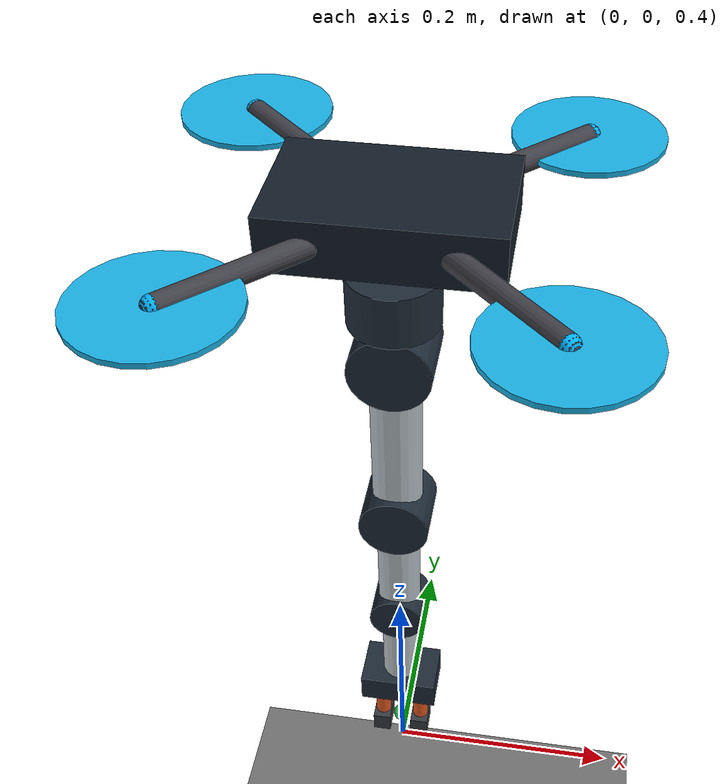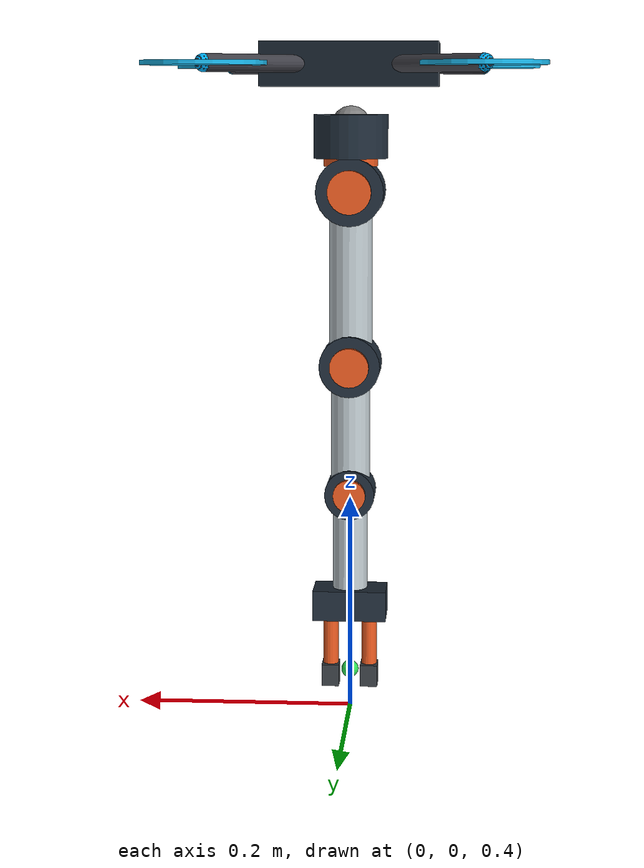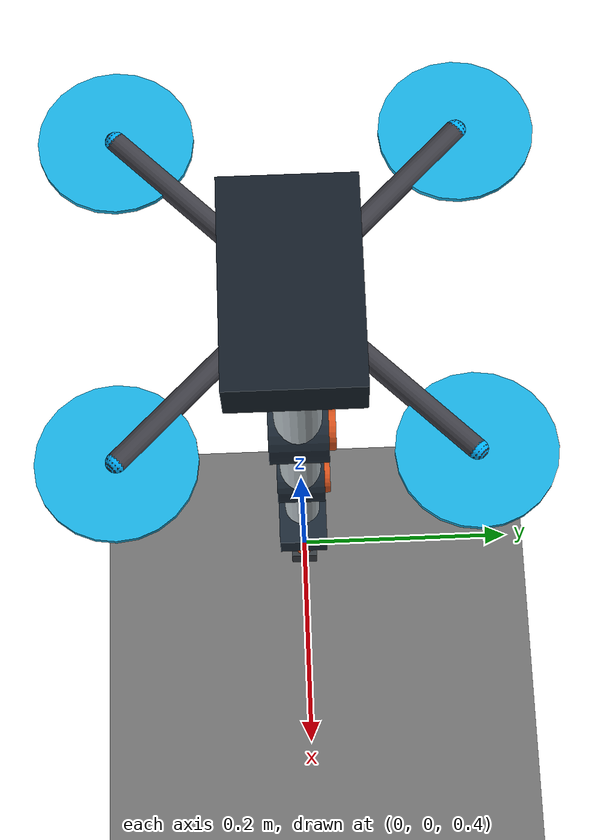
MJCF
<mujoco model="aerial_manipulator_hover">
  <compiler angle="radian" autolimits="true"/>
  <!-- Keep the robot's contacts enabled in this manipulation scene. -->
  <default>
    <default class="quadrotor_parts">
      <geom contype="1" conaffinity="1"/>
    </default>
  </default>

  <option timestep="0.001" gravity="0 0 -9.81" integrator="Euler"/>
  <size nuser_site="1"/>
  <!-- A compact statistic extent gives the free viewer a useful initial zoom. -->
  <statistic center="0 0 1" extent="3"/>

  <custom>
    <!-- NED planning bounds around the short hover workspace. -->
    <numeric name="planning_bounds" data="-5 -5 -2 5 5 0"/>
    <numeric name="flight_limits" data="3 2 8 12 0.7"/>
  </custom>

  <visual>
    <global azimuth="135" elevation="-25"/>
    <map znear="0.01" zfar="30"/>
  </visual>

  <asset>
    <texture name="ground_grid" type="2d" builtin="checker" width="512" height="512"
             rgb1="0.55 0.55 0.55" rgb2="0.35 0.35 0.35"/>
    <material name="ground" texture="ground_grid" texrepeat="8 8" texuniform="true"
              reflectance="0.1"/>
  </asset>

  <worldbody>
    <light name="sun" pos="0 0 8" dir="-0.3 0.2 -1" directional="true"/>
    <geom name="ground" type="plane" size="5 5 0.1" material="ground"/>

    <!-- The scene owns the initial pose; the included file owns robot geometry. -->
    <body name="quadrotor" pos="0 0 1" childclass="quadrotor_parts">
      <include file="../model/aerial_manipulator.xml"/>
    </body>
  </worldbody>

  <actuator>
    <motor name="arm_motor_0" joint="arm_joint_0" ctrlrange="-0.8 0.8" ctrllimited="true"/>
    <motor name="arm_motor_1" joint="arm_joint_1" ctrlrange="-0.8 0.8" ctrllimited="true"/>
    <motor name="arm_motor_2" joint="arm_joint_2" ctrlrange="-0.6 0.6" ctrllimited="true"/>
    <motor name="arm_motor_3" joint="arm_joint_3" ctrlrange="-0.4 0.4" ctrllimited="true"/>
    <position name="gripper_position" joint="gripper_left_joint" kp="120" kv="3"
              ctrlrange="0 0.025" ctrllimited="true" forcerange="-2 2" forcelimited="true"/>
  </actuator>

  <equality>
    <joint name="gripper_finger_sync" joint1="gripper_right_joint"
           joint2="gripper_left_joint" polycoef="0 1 0 0 0"/>
  </equality>
</mujoco>

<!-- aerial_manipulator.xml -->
<mujocoinclude>
  <!-- Quadrotor base with a four-joint arm and lightweight parallel gripper. -->
    <site name="planning_sphere_01" type="sphere" pos="0 0 0" size="0.098" group="5" rgba="0.2 0.6 1 0.15" />
    <site name="planning_sphere_02" type="sphere" pos="-0.120208 -0.120208 0" size="0.08" group="5" rgba="0.2 0.6 1 0.15" />
    <site name="planning_sphere_03" type="sphere" pos="-0.120208 0.120208 0" size="0.08" group="5" rgba="0.2 0.6 1 0.15" />
    <site name="planning_sphere_04" type="sphere" pos="0.120208 -0.120208 0" size="0.08" group="5" rgba="0.2 0.6 1 0.15" />
    <site name="planning_sphere_05" type="sphere" pos="0.120208 0.120208 0" size="0.08" group="5" rgba="0.2 0.6 1 0.15" />
  <freejoint name="quadrotor_freejoint" />
  <inertial pos="0 0 0" mass="0.5" diaginertia="0.0023 0.0023 0.0046" />
  <geom name="body" type="box" size="0.08 0.05 0.02" rgba="0.08 0.12 0.16 1" contype="1" conaffinity="1" />
  <geom name="arm_0" type="capsule" fromto="-0.120208 0.120208 0 0.120208 -0.120208 0" size="0.008" rgba="0.25 0.25 0.28 1" />
  <geom name="arm_1" type="capsule" fromto="-0.120208 -0.120208 0 0.120208 0.120208 0" size="0.008" rgba="0.25 0.25 0.28 1" />
  <site name="rotor_0" pos="0.120208 0.120208 0" size="0.008" user="1" rgba="0 0.7 1 1" />
  <site name="rotor_1" pos="0.120208 -0.120208 0" size="0.008" user="-1" rgba="0 0.7 1 1" />
  <site name="rotor_2" pos="-0.120208 -0.120208 0" size="0.008" user="1" rgba="0 0.7 1 1" />
  <site name="rotor_3" pos="-0.120208 0.120208 0" size="0.008" user="-1" rgba="0 0.7 1 1" />
  <geom name="rotor_visual_0" type="cylinder" pos="0.120208 0.120208 0" size="0.055 0.002" rgba="0.1 0.7 0.9 1" />
  <geom name="rotor_visual_1" type="cylinder" pos="0.120208 -0.120208 0" size="0.055 0.002" rgba="0.1 0.7 0.9 1" />
  <geom name="rotor_visual_2" type="cylinder" pos="-0.120208 -0.120208 0" size="0.055 0.002" rgba="0.1 0.7 0.9 1" />
  <geom name="rotor_visual_3" type="cylinder" pos="-0.120208 0.120208 0" size="0.055 0.002" rgba="0.1 0.7 0.9 1" />
  <!-- Arm links and gripper dimensions are simulation-scale assumptions. -->
  <body name="arm_base" pos="0 0 -0.055">
    <site name="planning_sphere_06" type="sphere" pos="0 0 -0.01" size="0.04" group="5" rgba="0.2 0.6 1 0.15" />
    <site name="planning_sphere_07" type="sphere" pos="0 0 -0.06" size="0.027" group="5" rgba="0.2 0.6 1 0.15" />
    <joint name="arm_joint_0" type="hinge" axis="0 0 1" range="-2.8 2.8" damping="0.08" armature="0.002" />
    <inertial pos="0 0 -0.020" mass="0.015" diaginertia="0.000012 0.000012 0.000008" />
    <geom name="arm_yaw_housing" type="cylinder" pos="0 0 -0.010" size="0.034 0.020" rgba="0.12 0.17 0.22 1" />
    <geom name="arm_yaw_cap" type="cylinder" pos="0 0 -0.032" size="0.025 0.005" rgba="0.88 0.34 0.12 1" contype="0" conaffinity="0" />
    <geom name="arm_link_0" type="capsule" fromto="0 0 0 0 0 -0.06" size="0.018" />
    <body name="arm_link_1_body" pos="0 0 -0.06">
    <site name="planning_sphere_08" type="sphere" pos="0 0 0" size="0.043" group="5" rgba="0.2 0.6 1 0.15" />
    <site name="planning_sphere_09" type="sphere" pos="0 0 -0.075" size="0.047" group="5" rgba="0.2 0.6 1 0.15" />
    <site name="planning_sphere_10" type="sphere" pos="0 0 -0.15" size="0.034" group="5" rgba="0.2 0.6 1 0.15" />
      <joint name="arm_joint_1" type="hinge" axis="0 1 0" range="-2.2 2.2" damping="0.06" armature="0.0015" />
      <inertial pos="0 0 -0.08" mass="0.035" diaginertia="0.000080 0.000080 0.000018" />
      <geom name="shoulder_housing" type="cylinder" size="0.031 0.028" quat="0.707107 0.707107 0 0" rgba="0.12 0.17 0.22 1" />
      <geom name="shoulder_cap" type="cylinder" pos="0 0.029 0" size="0.020 0.005" quat="0.707107 0.707107 0 0" rgba="0.88 0.34 0.12 1" contype="0" conaffinity="0" />
      <geom name="arm_link_1" type="capsule" fromto="0 0 0 0 0 -0.16" size="0.020" rgba="0.72 0.76 0.78 1" />
      <body name="arm_link_2_body" pos="0 0 -0.16">
    <site name="planning_sphere_11" type="sphere" pos="0 0 0" size="0.038" group="5" rgba="0.2 0.6 1 0.15" />
    <site name="planning_sphere_12" type="sphere" pos="0 0 -0.065" size="0.041" group="5" rgba="0.2 0.6 1 0.15" />
    <site name="planning_sphere_13" type="sphere" pos="0 0 -0.12" size="0.025" group="5" rgba="0.2 0.6 1 0.15" />
        <joint name="arm_joint_2" type="hinge" axis="0 1 0" range="-2.4 2.4" damping="0.05" armature="0.001" />
        <inertial pos="0 0 -0.06" mass="0.025" diaginertia="0.000030 0.000030 0.000006" />
        <geom name="elbow_housing" type="cylinder" size="0.028 0.025" quat="0.707107 0.707107 0 0" rgba="0.12 0.17 0.22 1" />
        <geom name="elbow_cap" type="cylinder" pos="0 0.026 0" size="0.018 0.005" quat="0.707107 0.707107 0 0" rgba="0.88 0.34 0.12 1" contype="0" conaffinity="0" />
        <geom name="arm_link_2" type="capsule" fromto="0 0 0 0 0 -0.12" size="0.018" rgba="0.72 0.76 0.78 1" />
        <body name="arm_link_3_body" pos="0 0 -0.12">
    <site name="planning_sphere_14" type="sphere" pos="0 0 0" size="0.032" group="5" rgba="0.2 0.6 1 0.15" />
    <site name="planning_sphere_15" type="sphere" pos="0 0 -0.061" size="0.036" group="5" rgba="0.2 0.6 1 0.15" />
    <site name="planning_sphere_16" type="sphere" pos="0 0 -0.09" size="0.018" group="5" rgba="0.2 0.6 1 0.15" />
          <joint name="arm_joint_3" type="hinge" axis="0 1 0" range="-2.4 2.4" damping="0.04" armature="0.0008" />
          <inertial pos="0 0 -0.045" mass="0.015" diaginertia="0.000011 0.000011 0.000003" />
          <geom name="wrist_housing" type="cylinder" size="0.023 0.021" quat="0.707107 0.707107 0 0" rgba="0.12 0.17 0.22 1" />
          <geom name="wrist_cap" type="cylinder" pos="0 0.022 0" size="0.015 0.004" quat="0.707107 0.707107 0 0" rgba="0.88 0.34 0.12 1" contype="0" conaffinity="0" />
          <geom name="arm_link_3" type="capsule" fromto="0 0 0 0 0 -0.09" size="0.016" rgba="0.72 0.76 0.78 1" />
          <!-- Frames used by end-effector pose, Jacobian, and grasp queries. -->
          <site name="tool_frame" pos="0 0 -0.09" size="0.010" rgba="0.95 0.3 0.1 1" />
          <body name="gripper_palm_body" pos="0 0 -0.105">
    <site name="planning_sphere_17" type="sphere" pos="0 0 0" size="0.043" group="5" rgba="0.2 0.6 1 0.15" />
            <site name="grasp_frame" pos="0 0 -0.065" size="0.008" rgba="0.2 0.9 0.35 1" />
            <inertial pos="0 0 0" mass="0.015" diaginertia="0.000008 0.000012 0.000016" />
            <geom name="gripper_palm" type="box" size="0.034 0.022 0.014" rgba="0.12 0.17 0.22 1" />
            <body name="gripper_left_body" pos="-0.018 0 -0.01">
    <site name="planning_sphere_18" type="sphere" pos="0 0 -0.018" size="0.028" group="5" rgba="0.2 0.6 1 0.15" />
    <site name="planning_sphere_19" type="sphere" pos="0 0 -0.055" size="0.024" group="5" rgba="0.2 0.6 1 0.15" />
              <joint name="gripper_left_joint" type="slide" axis="-1 0 0" range="0 0.025" damping="0.25" armature="0.0002" />
              <inertial pos="0 0 -0.033" mass="0.004" diaginertia="0.0000015 0.0000015 0.0000002" />
              <geom name="gripper_finger_left" type="capsule" fromto="0 0 0 0 0 -0.065" size="0.007" rgba="0.88 0.34 0.12 1" />
              <geom name="gripper_pad_left" type="box" pos="0 0 -0.059" size="0.008 0.012 0.010" rgba="0.22 0.24 0.26 1" />
            </body>
            <body name="gripper_right_body" pos="0.018 0 -0.01">
    <site name="planning_sphere_20" type="sphere" pos="0 0 -0.018" size="0.028" group="5" rgba="0.2 0.6 1 0.15" />
    <site name="planning_sphere_21" type="sphere" pos="0 0 -0.055" size="0.024" group="5" rgba="0.2 0.6 1 0.15" />
              <joint name="gripper_right_joint" type="slide" axis="1 0 0" range="0 0.025" damping="0.25" armature="0.0002" />
              <inertial pos="0 0 -0.033" mass="0.004" diaginertia="0.0000015 0.0000015 0.0000002" />
              <geom name="gripper_finger_right" type="capsule" fromto="0 0 0 0 0 -0.065" size="0.007" rgba="0.88 0.34 0.12 1" />
              <geom name="gripper_pad_right" type="box" pos="0 0 -0.059" size="0.008 0.012 0.010" rgba="0.22 0.24 0.26 1" />
            </body>
          </body>
        </body>
      </body>
    </body>
  </body>
</mujocoinclude>
